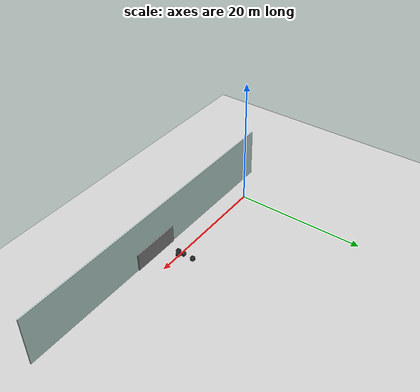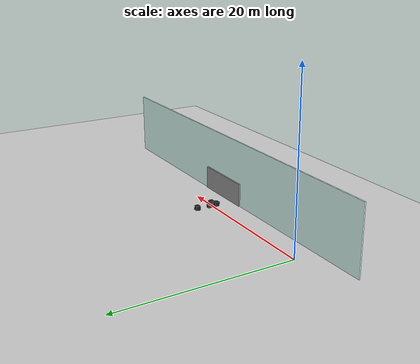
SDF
<sdf version="1.6">
 <world name="default">
  <model name="ground_plane">
   <static>1</static>
   <link name="link">
    <collision name="collision">
     <geometry><plane><normal>0 0 1</normal><size>100 100</size></plane></geometry>
     <surface>
      <contact><collide_bitmask>65535</collide_bitmask></contact>
      <friction><ode><mu>100</mu><mu2>50</mu2></ode></friction>
     </surface>
    </collision>
    <visual name="visual">
     <cast_shadows>0</cast_shadows>
     <geometry><plane><normal>0 0 1</normal><size>100 100</size></plane></geometry>
     <material>
      <script><uri>file://media/materials/scripts/gazebo.material</uri><name>Gazebo/Grey</name></script>
     </material>
    </visual>
   </link>
  </model>
  <model name="grey_wall_clone">
   <static>1</static>
   <link name="link">
    <pose>0 0 1.4 0 -0 0</pose>
    <collision name="collision"><geometry><box><size>7.5 0.2 2.8</size></box></geometry></collision>
    <visual name="visual">
     <cast_shadows>0</cast_shadows>
     <geometry><box><size>7.5 0.2 2.8</size></box></geometry>
     <material>
      <script>
       <uri>model://grey_wall/materials/scripts</uri>
       <uri>model://grey_wall/materials/textures</uri>
       <name>vrc/grey_wall</name>
      </script>
     </material>
    </visual>
   </link>
   <pose>18.3523 -2.72946 0 0 -0 0</pose>
  </model>
  <model name="unit_box_0_clone_22_clone_15">
   <link name="link">
    <inertial>
     <mass>1</mass>
     <inertia>
      <ixx>0.166667</ixx>
      <ixy>0</ixy>
      <ixz>0</ixz>
      <iyy>0.166667</iyy>
      <iyz>0</iyz>
      <izz>0.166667</izz>
     </inertia>
    </inertial>
    <visual name="visual">
     <geometry><box><size>0.530101 0.530101 0.530101</size></box></geometry>
     <material>
      <script><name>Gazebo/FlatBlack</name><uri>file://media/materials/scripts/gazebo.material</uri></script>
      <shader type="pixel"><normal_map>__default__</normal_map></shader>
      <ambient>0.1 0.1 0.1 1</ambient>
      <diffuse>0.1 0.1 0.1 1</diffuse>
      <specular>0.01 0.01 0.01 1</specular>
      <emissive>0 0 0 1</emissive>
     </material>
    </visual>
    <collision name="collision">
     <geometry><box><size>0.530101 0.530101 0.530101</size></box></geometry>
     <surface>
      <friction>
       <ode><mu>1</mu><mu2>1</mu2><fdir1>0 0 0</fdir1><slip1>0</slip1><slip2>0</slip2></ode>
       <torsional>
        <coefficient>1</coefficient>
        <patch_radius>0</patch_radius>
        <surface_radius>0</surface_radius>
        <use_patch_radius>1</use_patch_radius>
        <ode><slip>0</slip></ode>
       </torsional>
      </friction>
      <bounce><restitution_coefficient>0</restitution_coefficient><threshold>1e+06</threshold></bounce>
      <contact>
       <collide_without_contact>0</collide_without_contact>
       <collide_without_contact_bitmask>1</collide_without_contact_bitmask>
       <collide_bitmask>1</collide_bitmask>
       <ode>
        <soft_cfm>0</soft_cfm>
        <soft_erp>0.2</soft_erp>
        <kp>1e+13</kp>
        <kd>1</kd>
        <max_vel>0.01</max_vel>
        <min_depth>0</min_depth>
       </ode>
       <bullet>
        <split_impulse>1</split_impulse>
        <split_impulse_penetration_threshold>-0.01</split_impulse_penetration_threshold>
        <soft_cfm>0</soft_cfm>
        <soft_erp>0.2</soft_erp>
        <kp>1e+13</kp>
        <kd>1</kd>
       </bullet>
      </contact>
     </surface>
    </collision>
   </link>
   <static>0</static>
   <pose>16.1737 2.09638 0.284665 0.077045 0 -0.016615</pose>
  </model>
  <model name="unit_box_0_clone_22_clone_15_clone_2">
   <link name="link">
    <inertial>
     <mass>1</mass>
     <inertia>
      <ixx>0.166667</ixx>
      <ixy>0</ixy>
      <ixz>0</ixz>
      <iyy>0.166667</iyy>
      <iyz>0</iyz>
      <izz>0.166667</izz>
     </inertia>
    </inertial>
    <visual name="visual">
     <geometry><box><size>0.530101 0.530101 0.530101</size></box></geometry>
     <material>
      <script><name>Gazebo/FlatBlack</name><uri>file://media/materials/scripts/gazebo.material</uri></script>
      <shader type="pixel"><normal_map>__default__</normal_map></shader>
      <ambient>0.1 0.1 0.1 1</ambient>
      <diffuse>0.1 0.1 0.1 1</diffuse>
      <specular>0.01 0.01 0.01 1</specular>
      <emissive>0 0 0 1</emissive>
     </material>
    </visual>
    <collision name="collision">
     <geometry><box><size>0.530101 0.530101 0.530101</size></box></geometry>
     <surface>
      <friction>
       <ode><mu>1</mu><mu2>1</mu2><fdir1>0 0 0</fdir1><slip1>0</slip1><slip2>0</slip2></ode>
       <torsional>
        <coefficient>1</coefficient>
        <patch_radius>0</patch_radius>
        <surface_radius>0</surface_radius>
        <use_patch_radius>1</use_patch_radius>
        <ode><slip>0</slip></ode>
       </torsional>
      </friction>
      <bounce><restitution_coefficient>0</restitution_coefficient><threshold>1e+06</threshold></bounce>
      <contact>
       <collide_without_contact>0</collide_without_contact>
       <collide_without_contact_bitmask>1</collide_without_contact_bitmask>
       <collide_bitmask>1</collide_bitmask>
       <ode>
        <soft_cfm>0</soft_cfm>
        <soft_erp>0.2</soft_erp>
        <kp>1e+13</kp>
        <kd>1</kd>
        <max_vel>0.01</max_vel>
        <min_depth>0</min_depth>
       </ode>
       <bullet>
        <split_impulse>1</split_impulse>
        <split_impulse_penetration_threshold>-0.01</split_impulse_penetration_threshold>
        <soft_cfm>0</soft_cfm>
        <soft_erp>0.2</soft_erp>
        <kp>1e+13</kp>
        <kd>1</kd>
       </bullet>
      </contact>
     </surface>
    </collision>
   </link>
   <static>0</static>
   <pose>16.6778 -0.072849 0.311379 -0.000275 -0.023896 0.01374</pose>
  </model>
  <model name="unit_box_0_clone_22_clone_15_clone_3">
   <link name="link">
    <inertial>
     <mass>1</mass>
     <inertia>
      <ixx>0.166667</ixx>
      <ixy>0</ixy>
      <ixz>0</ixz>
      <iyy>0.166667</iyy>
      <iyz>0</iyz>
      <izz>0.166667</izz>
     </inertia>
    </inertial>
    <visual name="visual">
     <geometry><box><size>0.530101 0.530101 0.530101</size></box></geometry>
     <material>
      <script><name>Gazebo/FlatBlack</name><uri>file://media/materials/scripts/gazebo.material</uri></script>
      <shader type="pixel"><normal_map>__default__</normal_map></shader>
      <ambient>0.1 0.1 0.1 1</ambient>
      <diffuse>0.1 0.1 0.1 1</diffuse>
      <specular>0.01 0.01 0.01 1</specular>
      <emissive>0 0 0 1</emissive>
     </material>
    </visual>
    <collision name="collision">
     <geometry><box><size>0.530101 0.530101 0.530101</size></box></geometry>
     <surface>
      <friction>
       <ode><mu>1</mu><mu2>1</mu2><fdir1>0 0 0</fdir1><slip1>0</slip1><slip2>0</slip2></ode>
       <torsional>
        <coefficient>1</coefficient>
        <patch_radius>0</patch_radius>
        <surface_radius>0</surface_radius>
        <use_patch_radius>1</use_patch_radius>
        <ode><slip>0</slip></ode>
       </torsional>
      </friction>
      <bounce><restitution_coefficient>0</restitution_coefficient><threshold>1e+06</threshold></bounce>
      <contact>
       <collide_without_contact>0</collide_without_contact>
       <collide_without_contact_bitmask>1</collide_without_contact_bitmask>
       <collide_bitmask>1</collide_bitmask>
       <ode>
        <soft_cfm>0</soft_cfm>
        <soft_erp>0.2</soft_erp>
        <kp>1e+13</kp>
        <kd>1</kd>
        <max_vel>0.01</max_vel>
        <min_depth>0</min_depth>
       </ode>
       <bullet>
        <split_impulse>1</split_impulse>
        <split_impulse_penetration_threshold>-0.01</split_impulse_penetration_threshold>
        <soft_cfm>0</soft_cfm>
        <soft_erp>0.2</soft_erp>
        <kp>1e+13</kp>
        <kd>1</kd>
       </bullet>
      </contact>
     </surface>
    </collision>
   </link>
   <static>0</static>
   <pose>16.1475 0.465806 0.291749 -0.106231 -0.000338 -0.003302</pose>
  </model>
  <model name="unit_box_0_clone_22_clone_15_clone_5">
   <link name="link">
    <inertial>
     <mass>1</mass>
     <inertia>
      <ixx>0.166667</ixx>
      <ixy>0</ixy>
      <ixz>0</ixz>
      <iyy>0.166667</iyy>
      <iyz>0</iyz>
      <izz>0.166667</izz>
     </inertia>
    </inertial>
    <visual name="visual">
     <geometry><box><size>0.530101 0.530101 0.530101</size></box></geometry>
     <material>
      <script><name>Gazebo/FlatBlack</name><uri>file://media/materials/scripts/gazebo.material</uri></script>
      <shader type="pixel"><normal_map>__default__</normal_map></shader>
      <ambient>0.1 0.1 0.1 1</ambient>
      <diffuse>0.1 0.1 0.1 1</diffuse>
      <specular>0.01 0.01 0.01 1</specular>
      <emissive>0 0 0 1</emissive>
     </material>
    </visual>
    <collision name="collision">
     <geometry><box><size>0.530101 0.530101 0.530101</size></box></geometry>
     <surface>
      <friction>
       <ode><mu>1</mu><mu2>1</mu2><fdir1>0 0 0</fdir1><slip1>0</slip1><slip2>0</slip2></ode>
       <torsional>
        <coefficient>1</coefficient>
        <patch_radius>0</patch_radius>
        <surface_radius>0</surface_radius>
        <use_patch_radius>1</use_patch_radius>
        <ode><slip>0</slip></ode>
       </torsional>
      </friction>
      <bounce><restitution_coefficient>0</restitution_coefficient><threshold>1e+06</threshold></bounce>
      <contact>
       <collide_without_contact>0</collide_without_contact>
       <collide_without_contact_bitmask>1</collide_without_contact_bitmask>
       <collide_bitmask>1</collide_bitmask>
       <ode>
        <soft_cfm>0</soft_cfm>
        <soft_erp>0.2</soft_erp>
        <kp>1e+13</kp>
        <kd>1</kd>
        <max_vel>0.01</max_vel>
        <min_depth>0</min_depth>
       </ode>
       <bullet>
        <split_impulse>1</split_impulse>
        <split_impulse_penetration_threshold>-0.01</split_impulse_penetration_threshold>
        <soft_cfm>0</soft_cfm>
        <soft_erp>0.2</soft_erp>
        <kp>1e+13</kp>
        <kd>1</kd>
       </bullet>
      </contact>
     </surface>
    </collision>
   </link>
   <static>0</static>
   <pose>16.1476 -0.467481 0.286463 0.082994 -0.001332 0.016014</pose>
  </model>
  <model name="world_frame">
   <link name="Wall_210">
    <pose>-0.024075 -5.42699 -0.100255 0 -0 0</pose>
    <visual name="Wall_210_Visual">
     <pose>0 0 4 0 -0 0</pose>
     <geometry><box><size>47.75 0.15 8</size></box></geometry>
     <material>
      <script><uri>file://media/materials/scripts/gazebo.material</uri><name>Gazebo/Grey</name></script>
      <ambient>0.866667 1 0.972549 1</ambient>
      <shader type="pixel"/>
      <diffuse>0.7 0.7 0.7 1</diffuse>
      <specular>0.01 0.01 0.01 1</specular>
      <emissive>0 0 0 1</emissive>
     </material>
     <meta><layer>0</layer></meta>
    </visual>
    <collision name="Wall_210_Collision">
     <pose>0 0 4 0 -0 0</pose>
     <geometry><box><size>47.75 0.15 8</size></box></geometry>
     <surface>
      <friction>
       <ode><mu>1</mu><mu2>1</mu2><fdir1>0 0 0</fdir1><slip1>0</slip1><slip2>0</slip2></ode>
       <torsional>
        <coefficient>1</coefficient>
        <patch_radius>0</patch_radius>
        <surface_radius>0</surface_radius>
        <use_patch_radius>1</use_patch_radius>
        <ode><slip>0</slip></ode>
       </torsional>
      </friction>
      <bounce><restitution_coefficient>0</restitution_coefficient><threshold>1e+06</threshold></bounce>
      <contact>
       <collide_without_contact>0</collide_without_contact>
       <collide_without_contact_bitmask>1</collide_without_contact_bitmask>
       <collide_bitmask>1</collide_bitmask>
       <ode>
        <soft_cfm>0</soft_cfm>
        <soft_erp>0.2</soft_erp>
        <kp>1e+13</kp>
        <kd>1</kd>
        <max_vel>0.01</max_vel>
        <min_depth>0</min_depth>
       </ode>
       <bullet>
        <split_impulse>1</split_impulse>
        <split_impulse_penetration_threshold>-0.01</split_impulse_penetration_threshold>
        <soft_cfm>0</soft_cfm>
        <soft_erp>0.2</soft_erp>
        <kp>1e+13</kp>
        <kd>1</kd>
       </bullet>
      </contact>
     </surface>
    </collision>
   </link>
   <static>1</static>
   <pose>17.5761 2.5415 0 0 -0 0</pose>
  </model>
 </world>
</sdf>
